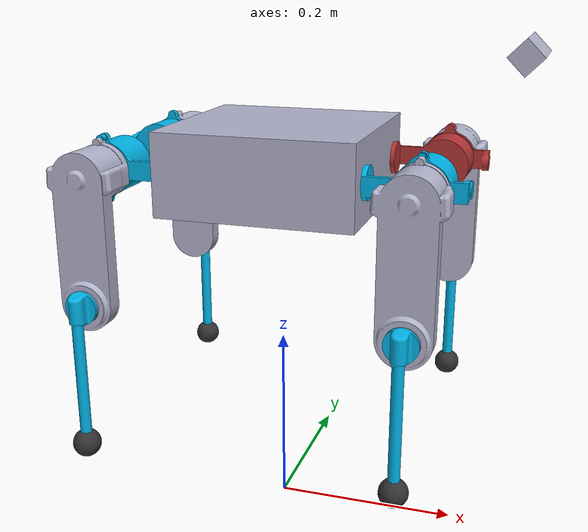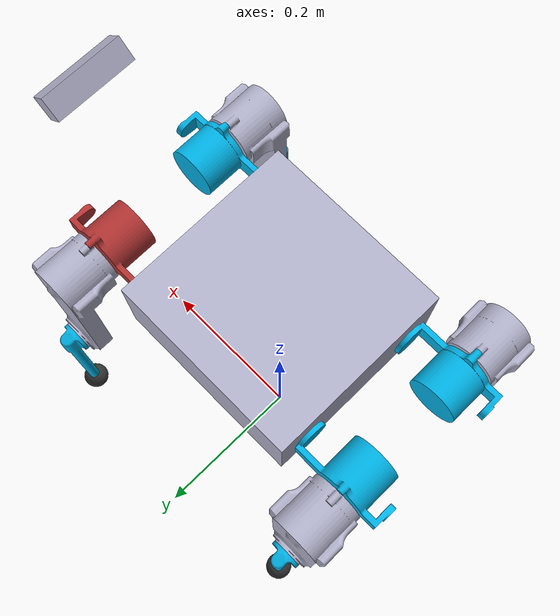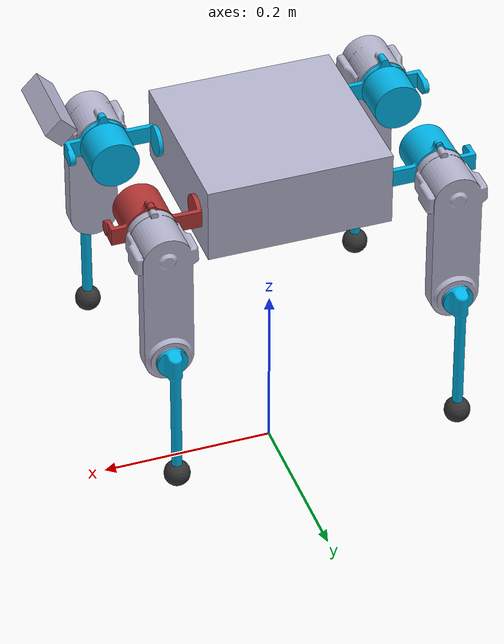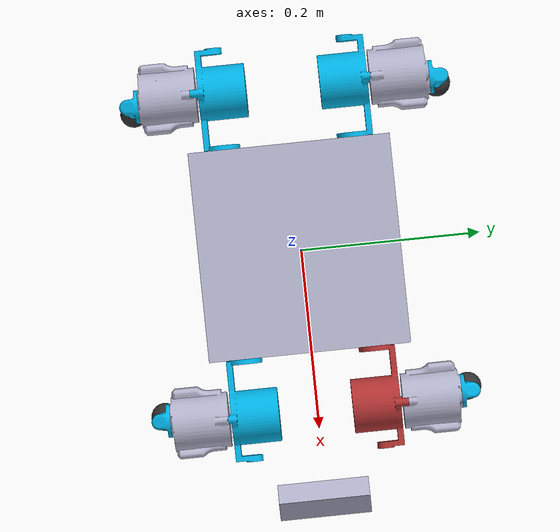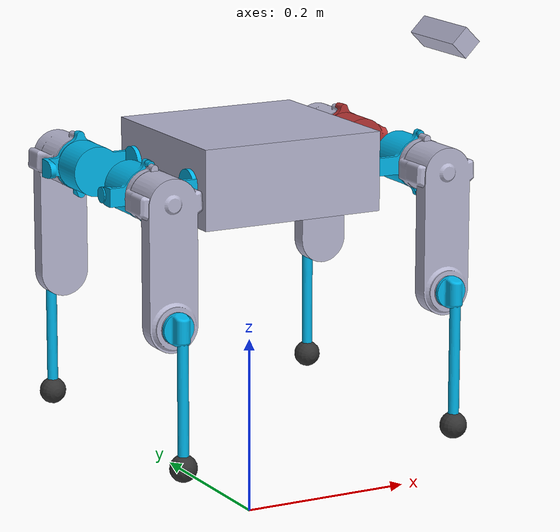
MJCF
<?xml version="1.0"?>
<mujoco model="mors_sim">
  <compiler autolimits="true" angle="degree"/>
  <option timestep="0.001" integrator="Euler" cone="elliptic" impratio="10"/>

  <visual>
    <map shadowscale="0.05" shadowclip="1.0"/>
  </visual>

  <default>
    <geom friction="1.0 0.02 0.01" margin="0.00" solimp="0.015 1.0 0.022"/>
    <joint damping="0.1" armature="0.001" frictionloss="0.1"/>
  </default>

  <!-- Assets: meshes referenced from the package (kept as in URDF) -->
  <asset>
    <mesh name="body" file="../meshes/b.obj"/>
    <mesh name="joint1" file="../meshes/j1.stl"/>
    <mesh name="joint2" file="../meshes/j2.obj"/>
    <mesh name="joint3_1" file="../meshes/j3_1.obj"/>
  </asset>

  <worldbody>
    <light pos="0 0 20.0" mode="trackcom"/>
    <camera name="closeup" pos="0 -.1 .07" xyaxes="1 0 0 0 1 2"/>

    <!-- Base / body -->
    <body name="base" pos="0 0 0.4">
      <freejoint/>
      <site name="IMU"/>
      <inertial
        pos="-0.00272 0.000875 0.000178"
        mass="3.748"
        fullinertia="0.012838176 0.056852389 0.064034355 -0.000006851 0.000156493 -0.000095392"
      />
      <geom type="box" size="0.1059 0.102 0.044" name="body_visual" rgba="0.7 0.7 0.8 1" />

      <!-- Four legs: R1, L1, R2, L2 -->
      <!-- Abad attach positions from XACRO: abad_attach_x=0.1035, abad_attach_y=0.066 -->
      <!-- Leg R1 -->
      <body name="abad_R1" pos="0.1065 -0.067 0.0" euler="0 90 -90">
        <joint name="abad_joint_R1" type="hinge" axis="0 0 1"/>
        <inertial
          pos="-0.00606 -0.000018 0.058144"
          mass="0.309"
          fullinertia="0.000178705 0.000161337 0.0001003 -1.02e-7 -0.000003483 -5e-9"
        />
        <geom type="mesh" mesh="joint1" rgba="0.0 0.7 0.9 1"/>
        <body name="hip_R1" pos="0.0215 0.0 0.059" euler="0 90 90">
          <joint name="hip_joint_R1" type="hinge" axis="0 0 1"/>
          <inertial
            pos="0.034385 -0.000226 0.044820"
            mass="0.532"
            fullinertia="0.000279734 0.001715204 0.001731949 2.8e-7 -0.000253770 -1.2e-6"
          />
          <geom type="mesh" mesh="joint2" rgba="0.7 0.7 0.8 1"/>
          <body name="knee_R1" pos="0.13 0.0 0.0645" euler="0 0 0">
            <joint name="knee_joint_R1" type="hinge" axis="0 0 1"/>
            <inertial
              pos="0.058408 0.0 0.009288"
              mass="0.049"
              fullinertia="0.000003796 0.000208824 0.000208730 0.0 -0.000007744 0.0"
            />
            <geom type="mesh" mesh="joint3_1" rgba="0.0 0.7 0.9 1"/>
            <body name="ef_R1" pos="0.1485 0.0 0.012">
              <inertial
                pos="0.0 0.0 0.0"
                mass="0.018"
                fullinertia="1.4e-6 1.4e-6 1.4e-6 0.0 0.0 0.0"
              />
              <geom type="sphere" size="0.015" rgba="0.2 0.2 0.2 1" margin="0.001" priority="1" solimp="0.8 1.0 0.0023 0.5 2" solref="0.01 1"/>
            </body>
          </body>
        </body>
      </body>

      <!-- Leg L1 -->
      <body name="abad_L1" pos="0.1065 0.067 0.0" euler="0 90 90">
        <joint name="abad_joint_L1" type="hinge" axis="0 0 1"/>
        <inertial
          pos="-0.00606 -0.000018 0.058144"
          mass="0.309"
          fullinertia="0.000178705 0.000161337 0.0001003 -1.02e-7 -0.000003483 -5e-9"
        />
        <geom type="mesh" mesh="joint1" rgba="0.7 0.2 0.2 1"/>
        <body name="hip_L1" pos="0.0215 0.0 0.059" euler="0 90 -90">
          <joint name="hip_joint_L1" type="hinge" axis="0 0 1"/>
          <inertial
            pos="0.034385 -0.000226 0.044820"
            mass="0.532"
            fullinertia="0.000279734 0.001715204 0.001731949 2.8e-7 -0.000253770 -1.2e-6"
          />
          <geom type="mesh" mesh="joint2" rgba="0.7 0.7 0.8 1"/>
          <body name="knee_L1" pos="0.13 0.0 0.0645">
            <joint name="knee_joint_L1" type="hinge" axis="0 0 1"/>
            <inertial
              pos="0.058408 0.0 0.009288"
              mass="0.049"
              fullinertia="0.000003796 0.000208824 0.000208730 0.0 -0.000007744 0.0"
            />
            <geom type="mesh" mesh="joint3_1" rgba="0.0 0.7 0.9 1"/>
            <body name="ef_L1" pos="0.1485 0.0 0.012">
              <inertial
                pos="0.0 0.0 0.0"
                mass="0.018"
                fullinertia="1.4e-6 1.4e-6 1.4e-6 0.0 0.0 0.0"
              />
              <geom type="sphere" size="0.015" rgba="0.2 0.2 0.2 1" margin="0.001" priority="1" solimp="0.8 1.0 0.0023 0.5 2" solref="0.01 1"/>
            </body>
          </body>
        </body>
      </body>

      <!-- Leg R2 (mirrored in x) -->
      <body name="abad_R2" pos="-0.1065 -0.067 0.0" euler="0 -90 -90">
        <joint name="abad_joint_R2" type="hinge" axis="0 0 1"/>
        <inertial
          pos="-0.00606 -0.000018 0.058144"
          mass="0.309"
          fullinertia="0.000178705 0.000161337 0.0001003 -1.02e-7 -0.000003483 -5e-9"
        />
        <geom type="mesh" mesh="joint1" rgba="0.0 0.7 0.9 1"/>
        <body name="hip_R2" pos="0.0215 0.0 0.059" euler="0 90 -90">
          <joint name="hip_joint_R2" type="hinge" axis="0 0 1"/>
          <inertial
            pos="0.034385 -0.000226 0.044820"
            mass="0.532"
            fullinertia="0.000279734 0.001715204 0.001731949 2.8e-7 -0.000253770 -1.2e-6"
          />
          <geom type="mesh" mesh="joint2" rgba="0.7 0.7 0.8 1"/>
          <body name="knee_R2" pos="0.13 0.0 0.0645">
            <joint name="knee_joint_R2" type="hinge" axis="0 0 1"/>
            <inertial
              pos="0.058408 0.0 0.009288"
              mass="0.049"
              fullinertia="0.000003796 0.000208824 0.000208730 0.0 -0.000007744 0.0"
            />
            <geom type="mesh" mesh="joint3_1" rgba="0.0 0.7 0.9 1"/>
            <body name="ef_R2" pos="0.1485 0.0 0.012">
              <inertial
                pos="0.0 0.0 0.0"
                mass="0.018"
                fullinertia="1.4e-6 1.4e-6 1.4e-6 0.0 0.0 0.0"
              />
              <geom type="sphere" size="0.015" rgba="0.2 0.2 0.2 1" margin="0.001" priority="1" solimp="0.8 1.0 0.0023 0.5 2" solref="0.01 1"/>
            </body>
          </body>
        </body>
      </body>

      <!-- Leg L2 (mirrored in x) -->
      <body name="abad_L2" pos="-0.1065 0.067 0.0" euler="0 -90 90">
        <joint name="abad_joint_L2" type="hinge" axis="0 0 1"/>
        <inertial
          pos="-0.00606 -0.000018 0.058144"
          mass="0.309"
          fullinertia="0.000178705 0.000161337 0.0001003 -1.02e-7 -0.000003483 -5e-9"
        />
        <geom type="mesh" mesh="joint1" rgba="0.0 0.7 0.9 1"/>
        <body name="hip_L2" pos="0.0215 0.0 0.059" euler="0 90 90">
          <joint name="hip_joint_L2" type="hinge" axis="0 0 1"/>
          <inertial
            pos="0.034385 -0.000226 0.044820"
            mass="0.532"
            fullinertia="0.000279734 0.001715204 0.001731949 2.8e-7 -0.000253770 -1.2e-6"
          />
          <geom type="mesh" mesh="joint2" rgba="0.7 0.7 0.8 1"/>
          <body name="knee_L2" pos="0.13 0.0 0.0645">
            <joint name="knee_joint_L2" type="hinge" axis="0 0 1"/>
            <inertial
              pos="0.058408 0.0 0.009288"
              mass="0.049"
              fullinertia="0.000003796 0.000208824 0.000208730 0.0 -0.000007744 0.0"
            />
            <geom type="mesh" mesh="joint3_1" rgba="0.0 0.7 0.9 1"/>
            <body name="ef_L2" pos="0.1485 0.0 0.012">
              <inertial
                pos="0.0 0.0 0.0"
                mass="0.018"
                fullinertia="1.4e-6 1.4e-6 1.4e-6 0.0 0.0 0.0"
              />
              <geom type="sphere" size="0.015" rgba="0.2 0.2 0.2 1" margin="0.001" priority="1" solimp="0.8 1.0 0.0023 0.5 2" solref="0.01 1"/>
            </body>
          </body>
        </body>
      </body>

      <!-- Intel RealSense D435i frame -->
      <body name="camera_frame" pos="0.2491 0.0 0.1201" euler="0 45 90">
        <inertial
          pos="0 0 0"
          mass="0.072"
          fullinertia="0.000007500 0.000052350 0.000052350 0 0 0"
        />
        <geom
          name="d435i_body"
          type="box"
          size="0.045 0.0125 0.0125"
          rgba="0.7 0.7 0.8 1"
          contype="0"
          conaffinity="0"
        />
        <camera name="depth_camera" pos="0.0175 -0.0208 0.0" euler="-90 0 180" fovy="58"/>
      </body>

    </body>
  </worldbody>

  <!-- Actuators: simple motors mapped to the joint names (effort interface analog) -->
  <actuator>
    <motor joint="abad_joint_R1" gear="1" ctrlrange="-6 6" ctrllimited="true"/>
    <motor joint="hip_joint_R1" gear="1" ctrlrange="-6 6" ctrllimited="true"/>
    <motor joint="knee_joint_R1" gear="1" ctrlrange="-12 12" ctrllimited="true"/>
    <motor joint="abad_joint_L1" gear="1" ctrlrange="-6 6" ctrllimited="true"/>
    <motor joint="hip_joint_L1" gear="1" ctrlrange="-6 6" ctrllimited="true"/>
    <motor joint="knee_joint_L1" gear="1" ctrlrange="-12 12" ctrllimited="true"/>
    <motor joint="abad_joint_R2" gear="1" ctrlrange="-6 6" ctrllimited="true"/>
    <motor joint="hip_joint_R2" gear="1" ctrlrange="-6 6" ctrllimited="true"/>
    <motor joint="knee_joint_R2" gear="1" ctrlrange="-12 12" ctrllimited="true"/>
    <motor joint="abad_joint_L2" gear="1" ctrlrange="-6 6" ctrllimited="true"/>
    <motor joint="hip_joint_L2" gear="1" ctrlrange="-6 6" ctrllimited="true"/>
    <motor joint="knee_joint_L2" gear="1" ctrlrange="-12 12" ctrllimited="true"/>
  </actuator>

  <sensor>
    <accelerometer name="accelerometer" site="IMU"/>
  </sensor>

</mujoco>
